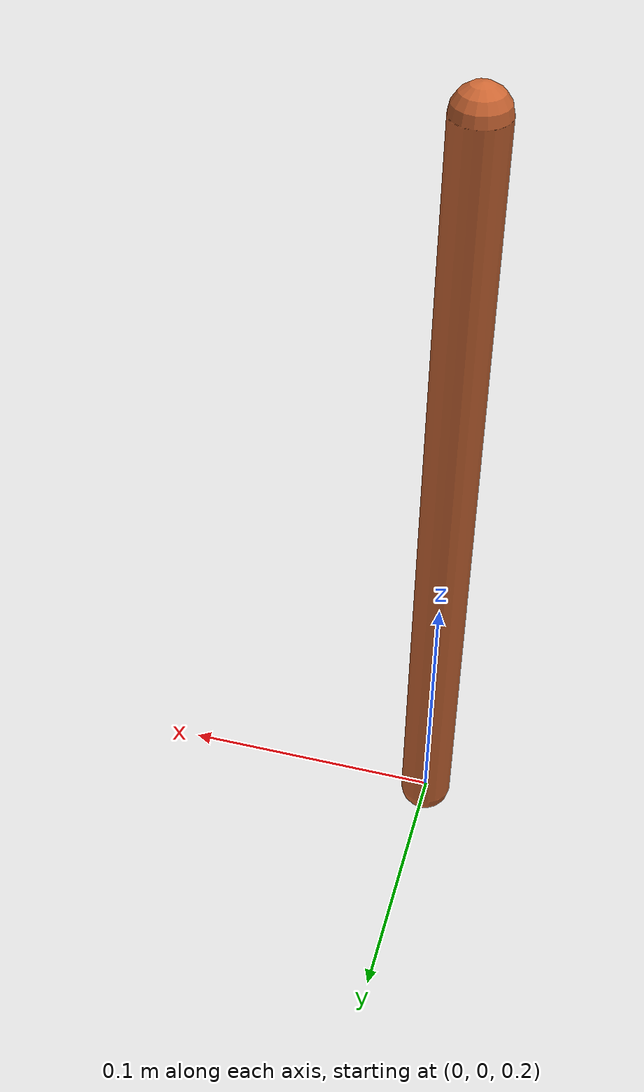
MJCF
<!--
  Alternative MJCF for tests that need a distinct BP class. The
  importer derives the BP path from the file stem, so this file just
  needs a different name. Kept minimal: a single pendulum.
-->
<mujoco model="urlab_golden_scene_alt">
    <option timestep="0.002" integrator="implicitfast"/>

    <worldbody>
        <light pos="0 0 3" dir="0 0 -1"/>
        <body name="pendulum_base" pos="0 0 0.5">
            <geom name="rod" type="capsule" fromto="0 0 0 0.0 0 -0.3" size="0.01" rgba="0.8 0.4 0.2 1"/>
            <joint name="pivot" type="hinge" axis="0 1 0"/>
        </body>
    </worldbody>

    <actuator>
        <position name="pivot_act" joint="pivot" kp="20"/>
    </actuator>
</mujoco>
